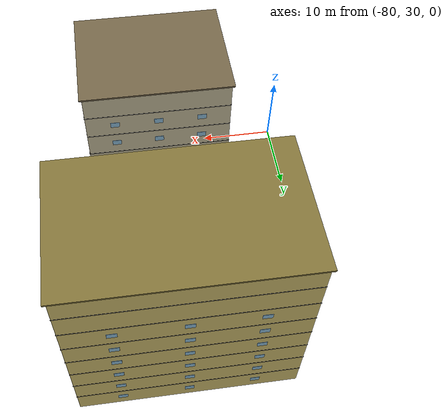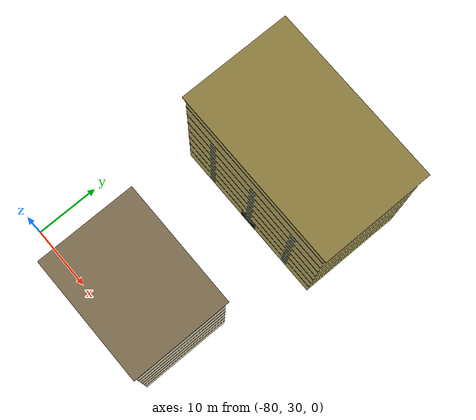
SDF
<sdf version="1.7">
 <world name="campus_regional">
  <model name="teaching_building">
   <static>true</static>
   <pose>-62.0 62.0 0 0 0 0</pose>
   <link name="body">
    <visual name="body">
     <pose>0 0 12.800 0 0 0</pose>
     <geometry><box><size>26.000 16.000 25.600</size></box></geometry>
     <material><ambient>0.900 0.820 0.480 1.000</ambient><diffuse>0.900 0.820 0.480 1.000</diffuse></material>
    </visual>
    <collision name="body_collision">
     <pose>0 0 12.800 0 0 0</pose>
     <geometry><box><size>26.000 16.000 25.600</size></box></geometry>
    </collision>
    <visual name="roof">
     <pose>0 0 25.700 0 0 0</pose>
     <geometry><box><size>26.600 16.600 0.200</size></box></geometry>
     <material><ambient>0.540 0.480 0.240 1.000</ambient><diffuse>0.540 0.480 0.240 1.000</diffuse></material>
    </visual>
    <visual name="floor_sep_n_1">
     <pose>0 8.018 3.200 0 0 0</pose>
     <geometry><box><size>26.100 0.035 0.060</size></box></geometry>
     <material><ambient>0.080 0.080 0.080 1.000</ambient><diffuse>0.080 0.080 0.080 1.000</diffuse></material>
    </visual>
    <visual name="floor_sep_s_1">
     <pose>0 -8.018 3.200 0 0 0</pose>
     <geometry><box><size>26.100 0.035 0.060</size></box></geometry>
     <material><ambient>0.080 0.080 0.080 1.000</ambient><diffuse>0.080 0.080 0.080 1.000</diffuse></material>
    </visual>
    <visual name="floor_sep_e_1">
     <pose>13.018 0 3.200 0 0 0</pose>
     <geometry><box><size>0.035 16.100 0.060</size></box></geometry>
     <material><ambient>0.080 0.080 0.080 1.000</ambient><diffuse>0.080 0.080 0.080 1.000</diffuse></material>
    </visual>
    <visual name="floor_sep_w_1">
     <pose>-13.018 0 3.200 0 0 0</pose>
     <geometry><box><size>0.035 16.100 0.060</size></box></geometry>
     <material><ambient>0.080 0.080 0.080 1.000</ambient><diffuse>0.080 0.080 0.080 1.000</diffuse></material>
    </visual>
    <visual name="floor_sep_n_2">
     <pose>0 8.018 6.400 0 0 0</pose>
     <geometry><box><size>26.100 0.035 0.060</size></box></geometry>
     <material><ambient>0.080 0.080 0.080 1.000</ambient><diffuse>0.080 0.080 0.080 1.000</diffuse></material>
    </visual>
    <visual name="floor_sep_s_2">
     <pose>0 -8.018 6.400 0 0 0</pose>
     <geometry><box><size>26.100 0.035 0.060</size></box></geometry>
     <material><ambient>0.080 0.080 0.080 1.000</ambient><diffuse>0.080 0.080 0.080 1.000</diffuse></material>
    </visual>
    <visual name="floor_sep_e_2">
     <pose>13.018 0 6.400 0 0 0</pose>
     <geometry><box><size>0.035 16.100 0.060</size></box></geometry>
     <material><ambient>0.080 0.080 0.080 1.000</ambient><diffuse>0.080 0.080 0.080 1.000</diffuse></material>
    </visual>
    <visual name="floor_sep_w_2">
     <pose>-13.018 0 6.400 0 0 0</pose>
     <geometry><box><size>0.035 16.100 0.060</size></box></geometry>
     <material><ambient>0.080 0.080 0.080 1.000</ambient><diffuse>0.080 0.080 0.080 1.000</diffuse></material>
    </visual>
    <visual name="floor_sep_n_3">
     <pose>0 8.018 9.600 0 0 0</pose>
     <geometry><box><size>26.100 0.035 0.060</size></box></geometry>
     <material><ambient>0.080 0.080 0.080 1.000</ambient><diffuse>0.080 0.080 0.080 1.000</diffuse></material>
    </visual>
    <visual name="floor_sep_s_3">
     <pose>0 -8.018 9.600 0 0 0</pose>
     <geometry><box><size>26.100 0.035 0.060</size></box></geometry>
     <material><ambient>0.080 0.080 0.080 1.000</ambient><diffuse>0.080 0.080 0.080 1.000</diffuse></material>
    </visual>
    <visual name="floor_sep_e_3">
     <pose>13.018 0 9.600 0 0 0</pose>
     <geometry><box><size>0.035 16.100 0.060</size></box></geometry>
     <material><ambient>0.080 0.080 0.080 1.000</ambient><diffuse>0.080 0.080 0.080 1.000</diffuse></material>
    </visual>
    <visual name="floor_sep_w_3">
     <pose>-13.018 0 9.600 0 0 0</pose>
     <geometry><box><size>0.035 16.100 0.060</size></box></geometry>
     <material><ambient>0.080 0.080 0.080 1.000</ambient><diffuse>0.080 0.080 0.080 1.000</diffuse></material>
    </visual>
    <visual name="floor_sep_n_4">
     <pose>0 8.018 12.800 0 0 0</pose>
     <geometry><box><size>26.100 0.035 0.060</size></box></geometry>
     <material><ambient>0.080 0.080 0.080 1.000</ambient><diffuse>0.080 0.080 0.080 1.000</diffuse></material>
    </visual>
    <visual name="floor_sep_s_4">
     <pose>0 -8.018 12.800 0 0 0</pose>
     <geometry><box><size>26.100 0.035 0.060</size></box></geometry>
     <material><ambient>0.080 0.080 0.080 1.000</ambient><diffuse>0.080 0.080 0.080 1.000</diffuse></material>
    </visual>
    <visual name="floor_sep_e_4">
     <pose>13.018 0 12.800 0 0 0</pose>
     <geometry><box><size>0.035 16.100 0.060</size></box></geometry>
     <material><ambient>0.080 0.080 0.080 1.000</ambient><diffuse>0.080 0.080 0.080 1.000</diffuse></material>
    </visual>
    <visual name="floor_sep_w_4">
     <pose>-13.018 0 12.800 0 0 0</pose>
     <geometry><box><size>0.035 16.100 0.060</size></box></geometry>
     <material><ambient>0.080 0.080 0.080 1.000</ambient><diffuse>0.080 0.080 0.080 1.000</diffuse></material>
    </visual>
    <visual name="floor_sep_n_5">
     <pose>0 8.018 16.000 0 0 0</pose>
     <geometry><box><size>26.100 0.035 0.060</size></box></geometry>
     <material><ambient>0.080 0.080 0.080 1.000</ambient><diffuse>0.080 0.080 0.080 1.000</diffuse></material>
    </visual>
    <visual name="floor_sep_s_5">
     <pose>0 -8.018 16.000 0 0 0</pose>
     <geometry><box><size>26.100 0.035 0.060</size></box></geometry>
     <material><ambient>0.080 0.080 0.080 1.000</ambient><diffuse>0.080 0.080 0.080 1.000</diffuse></material>
    </visual>
    <visual name="floor_sep_e_5">
     <pose>13.018 0 16.000 0 0 0</pose>
     <geometry><box><size>0.035 16.100 0.060</size></box></geometry>
     <material><ambient>0.080 0.080 0.080 1.000</ambient><diffuse>0.080 0.080 0.080 1.000</diffuse></material>
    </visual>
    <visual name="floor_sep_w_5">
     <pose>-13.018 0 16.000 0 0 0</pose>
     <geometry><box><size>0.035 16.100 0.060</size></box></geometry>
     <material><ambient>0.080 0.080 0.080 1.000</ambient><diffuse>0.080 0.080 0.080 1.000</diffuse></material>
    </visual>
    <visual name="floor_sep_n_6">
     <pose>0 8.018 19.200 0 0 0</pose>
     <geometry><box><size>26.100 0.035 0.060</size></box></geometry>
     <material><ambient>0.080 0.080 0.080 1.000</ambient><diffuse>0.080 0.080 0.080 1.000</diffuse></material>
    </visual>
    <visual name="floor_sep_s_6">
     <pose>0 -8.018 19.200 0 0 0</pose>
     <geometry><box><size>26.100 0.035 0.060</size></box></geometry>
     <material><ambient>0.080 0.080 0.080 1.000</ambient><diffuse>0.080 0.080 0.080 1.000</diffuse></material>
    </visual>
    <visual name="floor_sep_e_6">
     <pose>13.018 0 19.200 0 0 0</pose>
     <geometry><box><size>0.035 16.100 0.060</size></box></geometry>
     <material><ambient>0.080 0.080 0.080 1.000</ambient><diffuse>0.080 0.080 0.080 1.000</diffuse></material>
    </visual>
    <visual name="floor_sep_w_6">
     <pose>-13.018 0 19.200 0 0 0</pose>
     <geometry><box><size>0.035 16.100 0.060</size></box></geometry>
     <material><ambient>0.080 0.080 0.080 1.000</ambient><diffuse>0.080 0.080 0.080 1.000</diffuse></material>
    </visual>
    <visual name="floor_sep_n_7">
     <pose>0 8.018 22.400 0 0 0</pose>
     <geometry><box><size>26.100 0.035 0.060</size></box></geometry>
     <material><ambient>0.080 0.080 0.080 1.000</ambient><diffuse>0.080 0.080 0.080 1.000</diffuse></material>
    </visual>
    <visual name="floor_sep_s_7">
     <pose>0 -8.018 22.400 0 0 0</pose>
     <geometry><box><size>26.100 0.035 0.060</size></box></geometry>
     <material><ambient>0.080 0.080 0.080 1.000</ambient><diffuse>0.080 0.080 0.080 1.000</diffuse></material>
    </visual>
    <visual name="floor_sep_e_7">
     <pose>13.018 0 22.400 0 0 0</pose>
     <geometry><box><size>0.035 16.100 0.060</size></box></geometry>
     <material><ambient>0.080 0.080 0.080 1.000</ambient><diffuse>0.080 0.080 0.080 1.000</diffuse></material>
    </visual>
    <visual name="floor_sep_w_7">
     <pose>-13.018 0 22.400 0 0 0</pose>
     <geometry><box><size>0.035 16.100 0.060</size></box></geometry>
     <material><ambient>0.080 0.080 0.080 1.000</ambient><diffuse>0.080 0.080 0.080 1.000</diffuse></material>
    </visual>
    <visual name="front_door">
     <pose>0 -8.012 1.2 0 0 0</pose>
     <geometry><box><size>3.000 0.050 2.400</size></box></geometry>
     <material><ambient>0.080 0.060 0.040 1.000</ambient><diffuse>0.080 0.060 0.040 1.000</diffuse></material>
    </visual>
    <visual name="win_n_1_-7.8">
     <pose>-7.800 8.020 1.700 0 0 0</pose>
     <geometry><box><size>1.100 0.035 0.750</size></box></geometry>
     <material><ambient>0.620 0.820 0.950 1.000</ambient><diffuse>0.620 0.820 0.950 1.000</diffuse></material>
    </visual>
    <visual name="win_s_1_-7.8">
     <pose>-7.800 -8.020 1.700 0 0 0</pose>
     <geometry><box><size>1.100 0.035 0.750</size></box></geometry>
     <material><ambient>0.620 0.820 0.950 1.000</ambient><diffuse>0.620 0.820 0.950 1.000</diffuse></material>
    </visual>
    <visual name="win_n_1_0.0">
     <pose>0.000 8.020 1.700 0 0 0</pose>
     <geometry><box><size>1.100 0.035 0.750</size></box></geometry>
     <material><ambient>0.620 0.820 0.950 1.000</ambient><diffuse>0.620 0.820 0.950 1.000</diffuse></material>
    </visual>
    <visual name="win_s_1_0.0">
     <pose>0.000 -8.020 1.700 0 0 0</pose>
     <geometry><box><size>1.100 0.035 0.750</size></box></geometry>
     <material><ambient>0.620 0.820 0.950 1.000</ambient><diffuse>0.620 0.820 0.950 1.000</diffuse></material>
    </visual>
    <visual name="win_n_1_7.8">
     <pose>7.800 8.020 1.700 0 0 0</pose>
     <geometry><box><size>1.100 0.035 0.750</size></box></geometry>
     <material><ambient>0.620 0.820 0.950 1.000</ambient><diffuse>0.620 0.820 0.950 1.000</diffuse></material>
    </visual>
    <visual name="win_s_1_7.8">
     <pose>7.800 -8.020 1.700 0 0 0</pose>
     <geometry><box><size>1.100 0.035 0.750</size></box></geometry>
     <material><ambient>0.620 0.820 0.950 1.000</ambient><diffuse>0.620 0.820 0.950 1.000</diffuse></material>
    </visual>
    <visual name="win_n_2_-7.8">
     <pose>-7.800 8.020 4.900 0 0 0</pose>
     <geometry><box><size>1.100 0.035 0.750</size></box></geometry>
     <material><ambient>0.620 0.820 0.950 1.000</ambient><diffuse>0.620 0.820 0.950 1.000</diffuse></material>
    </visual>
    <visual name="win_s_2_-7.8">
     <pose>-7.800 -8.020 4.900 0 0 0</pose>
     <geometry><box><size>1.100 0.035 0.750</size></box></geometry>
     <material><ambient>0.620 0.820 0.950 1.000</ambient><diffuse>0.620 0.820 0.950 1.000</diffuse></material>
    </visual>
    <visual name="win_n_2_0.0">
     <pose>0.000 8.020 4.900 0 0 0</pose>
     <geometry><box><size>1.100 0.035 0.750</size></box></geometry>
     <material><ambient>0.620 0.820 0.950 1.000</ambient><diffuse>0.620 0.820 0.950 1.000</diffuse></material>
    </visual>
    <visual name="win_s_2_0.0">
     <pose>0.000 -8.020 4.900 0 0 0</pose>
     <geometry><box><size>1.100 0.035 0.750</size></box></geometry>
     <material><ambient>0.620 0.820 0.950 1.000</ambient><diffuse>0.620 0.820 0.950 1.000</diffuse></material>
    </visual>
    <visual name="win_n_2_7.8">
     <pose>7.800 8.020 4.900 0 0 0</pose>
     <geometry><box><size>1.100 0.035 0.750</size></box></geometry>
     <material><ambient>0.620 0.820 0.950 1.000</ambient><diffuse>0.620 0.820 0.950 1.000</diffuse></material>
    </visual>
    <visual name="win_s_2_7.8">
     <pose>7.800 -8.020 4.900 0 0 0</pose>
     <geometry><box><size>1.100 0.035 0.750</size></box></geometry>
     <material><ambient>0.620 0.820 0.950 1.000</ambient><diffuse>0.620 0.820 0.950 1.000</diffuse></material>
    </visual>
    <visual name="win_n_3_-7.8">
     <pose>-7.800 8.020 8.100 0 0 0</pose>
     <geometry><box><size>1.100 0.035 0.750</size></box></geometry>
     <material><ambient>0.620 0.820 0.950 1.000</ambient><diffuse>0.620 0.820 0.950 1.000</diffuse></material>
    </visual>
    <visual name="win_s_3_-7.8">
     <pose>-7.800 -8.020 8.100 0 0 0</pose>
     <geometry><box><size>1.100 0.035 0.750</size></box></geometry>
     <material><ambient>0.620 0.820 0.950 1.000</ambient><diffuse>0.620 0.820 0.950 1.000</diffuse></material>
    </visual>
    <visual name="win_n_3_0.0">
     <pose>0.000 8.020 8.100 0 0 0</pose>
     <geometry><box><size>1.100 0.035 0.750</size></box></geometry>
     <material><ambient>0.620 0.820 0.950 1.000</ambient><diffuse>0.620 0.820 0.950 1.000</diffuse></material>
    </visual>
    <visual name="win_s_3_0.0">
     <pose>0.000 -8.020 8.100 0 0 0</pose>
     <geometry><box><size>1.100 0.035 0.750</size></box></geometry>
     <material><ambient>0.620 0.820 0.950 1.000</ambient><diffuse>0.620 0.820 0.950 1.000</diffuse></material>
    </visual>
    <visual name="win_n_3_7.8">
     <pose>7.800 8.020 8.100 0 0 0</pose>
     <geometry><box><size>1.100 0.035 0.750</size></box></geometry>
     <material><ambient>0.620 0.820 0.950 1.000</ambient><diffuse>0.620 0.820 0.950 1.000</diffuse></material>
    </visual>
    <visual name="win_s_3_7.8">
     <pose>7.800 -8.020 8.100 0 0 0</pose>
     <geometry><box><size>1.100 0.035 0.750</size></box></geometry>
     <material><ambient>0.620 0.820 0.950 1.000</ambient><diffuse>0.620 0.820 0.950 1.000</diffuse></material>
    </visual>
    <visual name="win_n_4_-7.8">
     <pose>-7.800 8.020 11.300 0 0 0</pose>
     <geometry><box><size>1.100 0.035 0.750</size></box></geometry>
     <material><ambient>0.620 0.820 0.950 1.000</ambient><diffuse>0.620 0.820 0.950 1.000</diffuse></material>
    </visual>
    <visual name="win_s_4_-7.8">
     <pose>-7.800 -8.020 11.300 0 0 0</pose>
     <geometry><box><size>1.100 0.035 0.750</size></box></geometry>
     <material><ambient>0.620 0.820 0.950 1.000</ambient><diffuse>0.620 0.820 0.950 1.000</diffuse></material>
    </visual>
    <visual name="win_n_4_0.0">
     <pose>0.000 8.020 11.300 0 0 0</pose>
     <geometry><box><size>1.100 0.035 0.750</size></box></geometry>
     <material><ambient>0.620 0.820 0.950 1.000</ambient><diffuse>0.620 0.820 0.950 1.000</diffuse></material>
    </visual>
    <visual name="win_s_4_0.0">
     <pose>0.000 -8.020 11.300 0 0 0</pose>
     <geometry><box><size>1.100 0.035 0.750</size></box></geometry>
     <material><ambient>0.620 0.820 0.950 1.000</ambient><diffuse>0.620 0.820 0.950 1.000</diffuse></material>
    </visual>
    <visual name="win_n_4_7.8">
     <pose>7.800 8.020 11.300 0 0 0</pose>
     <geometry><box><size>1.100 0.035 0.750</size></box></geometry>
     <material><ambient>0.620 0.820 0.950 1.000</ambient><diffuse>0.620 0.820 0.950 1.000</diffuse></material>
    </visual>
    <visual name="win_s_4_7.8">
     <pose>7.800 -8.020 11.300 0 0 0</pose>
     <geometry><box><size>1.100 0.035 0.750</size></box></geometry>
     <material><ambient>0.620 0.820 0.950 1.000</ambient><diffuse>0.620 0.820 0.950 1.000</diffuse></material>
    </visual>
    <visual name="win_n_5_-7.8">
     <pose>-7.800 8.020 14.500 0 0 0</pose>
     <geometry><box><size>1.100 0.035 0.750</size></box></geometry>
     <material><ambient>0.620 0.820 0.950 1.000</ambient><diffuse>0.620 0.820 0.950 1.000</diffuse></material>
    </visual>
    <visual name="win_s_5_-7.8">
     <pose>-7.800 -8.020 14.500 0 0 0</pose>
     <geometry><box><size>1.100 0.035 0.750</size></box></geometry>
     <material><ambient>0.620 0.820 0.950 1.000</ambient><diffuse>0.620 0.820 0.950 1.000</diffuse></material>
    </visual>
    <visual name="win_n_5_0.0">
     <pose>0.000 8.020 14.500 0 0 0</pose>
     <geometry><box><size>1.100 0.035 0.750</size></box></geometry>
     <material><ambient>0.620 0.820 0.950 1.000</ambient><diffuse>0.620 0.820 0.950 1.000</diffuse></material>
    </visual>
    <visual name="win_s_5_0.0">
     <pose>0.000 -8.020 14.500 0 0 0</pose>
     <geometry><box><size>1.100 0.035 0.750</size></box></geometry>
     <material><ambient>0.620 0.820 0.950 1.000</ambient><diffuse>0.620 0.820 0.950 1.000</diffuse></material>
    </visual>
    <visual name="win_n_5_7.8">
     <pose>7.800 8.020 14.500 0 0 0</pose>
     <geometry><box><size>1.100 0.035 0.750</size></box></geometry>
     <material><ambient>0.620 0.820 0.950 1.000</ambient><diffuse>0.620 0.820 0.950 1.000</diffuse></material>
    </visual>
    <visual name="win_s_5_7.8">
     <pose>7.800 -8.020 14.500 0 0 0</pose>
     <geometry><box><size>1.100 0.035 0.750</size></box></geometry>
     <material><ambient>0.620 0.820 0.950 1.000</ambient><diffuse>0.620 0.820 0.950 1.000</diffuse></material>
    </visual>
    <visual name="win_n_6_-7.8">
     <pose>-7.800 8.020 17.700 0 0 0</pose>
     <geometry><box><size>1.100 0.035 0.750</size></box></geometry>
     <material><ambient>0.620 0.820 0.950 1.000</ambient><diffuse>0.620 0.820 0.950 1.000</diffuse></material>
    </visual>
    <visual name="win_s_6_-7.8">
     <pose>-7.800 -8.020 17.700 0 0 0</pose>
     <geometry><box><size>1.100 0.035 0.750</size></box></geometry>
     <material><ambient>0.620 0.820 0.950 1.000</ambient><diffuse>0.620 0.820 0.950 1.000</diffuse></material>
    </visual>
    <visual name="win_n_6_0.0">
     <pose>0.000 8.020 17.700 0 0 0</pose>
     <geometry><box><size>1.100 0.035 0.750</size></box></geometry>
     <material><ambient>0.620 0.820 0.950 1.000</ambient><diffuse>0.620 0.820 0.950 1.000</diffuse></material>
    </visual>
    <visual name="win_s_6_0.0">
     <pose>0.000 -8.020 17.700 0 0 0</pose>
     <geometry><box><size>1.100 0.035 0.750</size></box></geometry>
     <material><ambient>0.620 0.820 0.950 1.000</ambient><diffuse>0.620 0.820 0.950 1.000</diffuse></material>
    </visual>
    <visual name="win_n_6_7.8">
     <pose>7.800 8.020 17.700 0 0 0</pose>
     <geometry><box><size>1.100 0.035 0.750</size></box></geometry>
     <material><ambient>0.620 0.820 0.950 1.000</ambient><diffuse>0.620 0.820 0.950 1.000</diffuse></material>
    </visual>
    <visual name="win_s_6_7.8">
     <pose>7.800 -8.020 17.700 0 0 0</pose>
     <geometry><box><size>1.100 0.035 0.750</size></box></geometry>
     <material><ambient>0.620 0.820 0.950 1.000</ambient><diffuse>0.620 0.820 0.950 1.000</diffuse></material>
    </visual>
   </link>
  </model>
  <model name="library">
   <static>true</static>
   <pose>-62.0 35.0 0 0 0 0</pose>
   <link name="body">
    <visual name="body">
     <pose>0 0 11.200 0 0 0</pose>
     <geometry><box><size>18.000 14.000 22.400</size></box></geometry>
     <material><ambient>0.860 0.820 0.680 1.000</ambient><diffuse>0.860 0.820 0.680 1.000</diffuse></material>
    </visual>
    <collision name="body_collision">
     <pose>0 0 11.200 0 0 0</pose>
     <geometry><box><size>18.000 14.000 22.400</size></box></geometry>
    </collision>
    <visual name="roof">
     <pose>0 0 22.500 0 0 0</pose>
     <geometry><box><size>18.600 14.600 0.200</size></box></geometry>
     <material><ambient>0.480 0.420 0.300 1.000</ambient><diffuse>0.480 0.420 0.300 1.000</diffuse></material>
    </visual>
    <visual name="floor_sep_n_1">
     <pose>0 7.018 3.200 0 0 0</pose>
     <geometry><box><size>18.100 0.035 0.060</size></box></geometry>
     <material><ambient>0.080 0.080 0.080 1.000</ambient><diffuse>0.080 0.080 0.080 1.000</diffuse></material>
    </visual>
    <visual name="floor_sep_s_1">
     <pose>0 -7.018 3.200 0 0 0</pose>
     <geometry><box><size>18.100 0.035 0.060</size></box></geometry>
     <material><ambient>0.080 0.080 0.080 1.000</ambient><diffuse>0.080 0.080 0.080 1.000</diffuse></material>
    </visual>
    <visual name="floor_sep_e_1">
     <pose>9.018 0 3.200 0 0 0</pose>
     <geometry><box><size>0.035 14.100 0.060</size></box></geometry>
     <material><ambient>0.080 0.080 0.080 1.000</ambient><diffuse>0.080 0.080 0.080 1.000</diffuse></material>
    </visual>
    <visual name="floor_sep_w_1">
     <pose>-9.018 0 3.200 0 0 0</pose>
     <geometry><box><size>0.035 14.100 0.060</size></box></geometry>
     <material><ambient>0.080 0.080 0.080 1.000</ambient><diffuse>0.080 0.080 0.080 1.000</diffuse></material>
    </visual>
    <visual name="floor_sep_n_2">
     <pose>0 7.018 6.400 0 0 0</pose>
     <geometry><box><size>18.100 0.035 0.060</size></box></geometry>
     <material><ambient>0.080 0.080 0.080 1.000</ambient><diffuse>0.080 0.080 0.080 1.000</diffuse></material>
    </visual>
    <visual name="floor_sep_s_2">
     <pose>0 -7.018 6.400 0 0 0</pose>
     <geometry><box><size>18.100 0.035 0.060</size></box></geometry>
     <material><ambient>0.080 0.080 0.080 1.000</ambient><diffuse>0.080 0.080 0.080 1.000</diffuse></material>
    </visual>
    <visual name="floor_sep_e_2">
     <pose>9.018 0 6.400 0 0 0</pose>
     <geometry><box><size>0.035 14.100 0.060</size></box></geometry>
     <material><ambient>0.080 0.080 0.080 1.000</ambient><diffuse>0.080 0.080 0.080 1.000</diffuse></material>
    </visual>
    <visual name="floor_sep_w_2">
     <pose>-9.018 0 6.400 0 0 0</pose>
     <geometry><box><size>0.035 14.100 0.060</size></box></geometry>
     <material><ambient>0.080 0.080 0.080 1.000</ambient><diffuse>0.080 0.080 0.080 1.000</diffuse></material>
    </visual>
    <visual name="floor_sep_n_3">
     <pose>0 7.018 9.600 0 0 0</pose>
     <geometry><box><size>18.100 0.035 0.060</size></box></geometry>
     <material><ambient>0.080 0.080 0.080 1.000</ambient><diffuse>0.080 0.080 0.080 1.000</diffuse></material>
    </visual>
    <visual name="floor_sep_s_3">
     <pose>0 -7.018 9.600 0 0 0</pose>
     <geometry><box><size>18.100 0.035 0.060</size></box></geometry>
     <material><ambient>0.080 0.080 0.080 1.000</ambient><diffuse>0.080 0.080 0.080 1.000</diffuse></material>
    </visual>
    <visual name="floor_sep_e_3">
     <pose>9.018 0 9.600 0 0 0</pose>
     <geometry><box><size>0.035 14.100 0.060</size></box></geometry>
     <material><ambient>0.080 0.080 0.080 1.000</ambient><diffuse>0.080 0.080 0.080 1.000</diffuse></material>
    </visual>
    <visual name="floor_sep_w_3">
     <pose>-9.018 0 9.600 0 0 0</pose>
     <geometry><box><size>0.035 14.100 0.060</size></box></geometry>
     <material><ambient>0.080 0.080 0.080 1.000</ambient><diffuse>0.080 0.080 0.080 1.000</diffuse></material>
    </visual>
    <visual name="floor_sep_n_4">
     <pose>0 7.018 12.800 0 0 0</pose>
     <geometry><box><size>18.100 0.035 0.060</size></box></geometry>
     <material><ambient>0.080 0.080 0.080 1.000</ambient><diffuse>0.080 0.080 0.080 1.000</diffuse></material>
    </visual>
    <visual name="floor_sep_s_4">
     <pose>0 -7.018 12.800 0 0 0</pose>
     <geometry><box><size>18.100 0.035 0.060</size></box></geometry>
     <material><ambient>0.080 0.080 0.080 1.000</ambient><diffuse>0.080 0.080 0.080 1.000</diffuse></material>
    </visual>
    <visual name="floor_sep_e_4">
     <pose>9.018 0 12.800 0 0 0</pose>
     <geometry><box><size>0.035 14.100 0.060</size></box></geometry>
     <material><ambient>0.080 0.080 0.080 1.000</ambient><diffuse>0.080 0.080 0.080 1.000</diffuse></material>
    </visual>
    <visual name="floor_sep_w_4">
     <pose>-9.018 0 12.800 0 0 0</pose>
     <geometry><box><size>0.035 14.100 0.060</size></box></geometry>
     <material><ambient>0.080 0.080 0.080 1.000</ambient><diffuse>0.080 0.080 0.080 1.000</diffuse></material>
    </visual>
    <visual name="floor_sep_n_5">
     <pose>0 7.018 16.000 0 0 0</pose>
     <geometry><box><size>18.100 0.035 0.060</size></box></geometry>
     <material><ambient>0.080 0.080 0.080 1.000</ambient><diffuse>0.080 0.080 0.080 1.000</diffuse></material>
    </visual>
    <visual name="floor_sep_s_5">
     <pose>0 -7.018 16.000 0 0 0</pose>
     <geometry><box><size>18.100 0.035 0.060</size></box></geometry>
     <material><ambient>0.080 0.080 0.080 1.000</ambient><diffuse>0.080 0.080 0.080 1.000</diffuse></material>
    </visual>
    <visual name="floor_sep_e_5">
     <pose>9.018 0 16.000 0 0 0</pose>
     <geometry><box><size>0.035 14.100 0.060</size></box></geometry>
     <material><ambient>0.080 0.080 0.080 1.000</ambient><diffuse>0.080 0.080 0.080 1.000</diffuse></material>
    </visual>
    <visual name="floor_sep_w_5">
     <pose>-9.018 0 16.000 0 0 0</pose>
     <geometry><box><size>0.035 14.100 0.060</size></box></geometry>
     <material><ambient>0.080 0.080 0.080 1.000</ambient><diffuse>0.080 0.080 0.080 1.000</diffuse></material>
    </visual>
    <visual name="floor_sep_n_6">
     <pose>0 7.018 19.200 0 0 0</pose>
     <geometry><box><size>18.100 0.035 0.060</size></box></geometry>
     <material><ambient>0.080 0.080 0.080 1.000</ambient><diffuse>0.080 0.080 0.080 1.000</diffuse></material>
    </visual>
    <visual name="floor_sep_s_6">
     <pose>0 -7.018 19.200 0 0 0</pose>
     <geometry><box><size>18.100 0.035 0.060</size></box></geometry>
     <material><ambient>0.080 0.080 0.080 1.000</ambient><diffuse>0.080 0.080 0.080 1.000</diffuse></material>
    </visual>
    <visual name="floor_sep_e_6">
     <pose>9.018 0 19.200 0 0 0</pose>
     <geometry><box><size>0.035 14.100 0.060</size></box></geometry>
     <material><ambient>0.080 0.080 0.080 1.000</ambient><diffuse>0.080 0.080 0.080 1.000</diffuse></material>
    </visual>
    <visual name="floor_sep_w_6">
     <pose>-9.018 0 19.200 0 0 0</pose>
     <geometry><box><size>0.035 14.100 0.060</size></box></geometry>
     <material><ambient>0.080 0.080 0.080 1.000</ambient><diffuse>0.080 0.080 0.080 1.000</diffuse></material>
    </visual>
    <visual name="front_door">
     <pose>0 -7.012 1.2 0 0 0</pose>
     <geometry><box><size>3.000 0.050 2.400</size></box></geometry>
     <material><ambient>0.080 0.060 0.040 1.000</ambient><diffuse>0.080 0.060 0.040 1.000</diffuse></material>
    </visual>
    <visual name="win_n_1_-5.4">
     <pose>-5.400 7.020 1.700 0 0 0</pose>
     <geometry><box><size>1.100 0.035 0.750</size></box></geometry>
     <material><ambient>0.620 0.820 0.950 1.000</ambient><diffuse>0.620 0.820 0.950 1.000</diffuse></material>
    </visual>
    <visual name="win_s_1_-5.4">
     <pose>-5.400 -7.020 1.700 0 0 0</pose>
     <geometry><box><size>1.100 0.035 0.750</size></box></geometry>
     <material><ambient>0.620 0.820 0.950 1.000</ambient><diffuse>0.620 0.820 0.950 1.000</diffuse></material>
    </visual>
    <visual name="win_n_1_0.0">
     <pose>0.000 7.020 1.700 0 0 0</pose>
     <geometry><box><size>1.100 0.035 0.750</size></box></geometry>
     <material><ambient>0.620 0.820 0.950 1.000</ambient><diffuse>0.620 0.820 0.950 1.000</diffuse></material>
    </visual>
    <visual name="win_s_1_0.0">
     <pose>0.000 -7.020 1.700 0 0 0</pose>
     <geometry><box><size>1.100 0.035 0.750</size></box></geometry>
     <material><ambient>0.620 0.820 0.950 1.000</ambient><diffuse>0.620 0.820 0.950 1.000</diffuse></material>
    </visual>
    <visual name="win_n_1_5.4">
     <pose>5.400 7.020 1.700 0 0 0</pose>
     <geometry><box><size>1.100 0.035 0.750</size></box></geometry>
     <material><ambient>0.620 0.820 0.950 1.000</ambient><diffuse>0.620 0.820 0.950 1.000</diffuse></material>
    </visual>
    <visual name="win_s_1_5.4">
     <pose>5.400 -7.020 1.700 0 0 0</pose>
     <geometry><box><size>1.100 0.035 0.750</size></box></geometry>
     <material><ambient>0.620 0.820 0.950 1.000</ambient><diffuse>0.620 0.820 0.950 1.000</diffuse></material>
    </visual>
    <visual name="win_n_2_-5.4">
     <pose>-5.400 7.020 4.900 0 0 0</pose>
     <geometry><box><size>1.100 0.035 0.750</size></box></geometry>
     <material><ambient>0.620 0.820 0.950 1.000</ambient><diffuse>0.620 0.820 0.950 1.000</diffuse></material>
    </visual>
    <visual name="win_s_2_-5.4">
     <pose>-5.400 -7.020 4.900 0 0 0</pose>
     <geometry><box><size>1.100 0.035 0.750</size></box></geometry>
     <material><ambient>0.620 0.820 0.950 1.000</ambient><diffuse>0.620 0.820 0.950 1.000</diffuse></material>
    </visual>
    <visual name="win_n_2_0.0">
     <pose>0.000 7.020 4.900 0 0 0</pose>
     <geometry><box><size>1.100 0.035 0.750</size></box></geometry>
     <material><ambient>0.620 0.820 0.950 1.000</ambient><diffuse>0.620 0.820 0.950 1.000</diffuse></material>
    </visual>
    <visual name="win_s_2_0.0">
     <pose>0.000 -7.020 4.900 0 0 0</pose>
     <geometry><box><size>1.100 0.035 0.750</size></box></geometry>
     <material><ambient>0.620 0.820 0.950 1.000</ambient><diffuse>0.620 0.820 0.950 1.000</diffuse></material>
    </visual>
    <visual name="win_n_2_5.4">
     <pose>5.400 7.020 4.900 0 0 0</pose>
     <geometry><box><size>1.100 0.035 0.750</size></box></geometry>
     <material><ambient>0.620 0.820 0.950 1.000</ambient><diffuse>0.620 0.820 0.950 1.000</diffuse></material>
    </visual>
    <visual name="win_s_2_5.4">
     <pose>5.400 -7.020 4.900 0 0 0</pose>
     <geometry><box><size>1.100 0.035 0.750</size></box></geometry>
     <material><ambient>0.620 0.820 0.950 1.000</ambient><diffuse>0.620 0.820 0.950 1.000</diffuse></material>
    </visual>
    <visual name="win_n_3_-5.4">
     <pose>-5.400 7.020 8.100 0 0 0</pose>
     <geometry><box><size>1.100 0.035 0.750</size></box></geometry>
     <material><ambient>0.620 0.820 0.950 1.000</ambient><diffuse>0.620 0.820 0.950 1.000</diffuse></material>
    </visual>
    <visual name="win_s_3_-5.4">
     <pose>-5.400 -7.020 8.100 0 0 0</pose>
     <geometry><box><size>1.100 0.035 0.750</size></box></geometry>
     <material><ambient>0.620 0.820 0.950 1.000</ambient><diffuse>0.620 0.820 0.950 1.000</diffuse></material>
    </visual>
    <visual name="win_n_3_0.0">
     <pose>0.000 7.020 8.100 0 0 0</pose>
     <geometry><box><size>1.100 0.035 0.750</size></box></geometry>
     <material><ambient>0.620 0.820 0.950 1.000</ambient><diffuse>0.620 0.820 0.950 1.000</diffuse></material>
    </visual>
    <visual name="win_s_3_0.0">
     <pose>0.000 -7.020 8.100 0 0 0</pose>
     <geometry><box><size>1.100 0.035 0.750</size></box></geometry>
     <material><ambient>0.620 0.820 0.950 1.000</ambient><diffuse>0.620 0.820 0.950 1.000</diffuse></material>
    </visual>
    <visual name="win_n_3_5.4">
     <pose>5.400 7.020 8.100 0 0 0</pose>
     <geometry><box><size>1.100 0.035 0.750</size></box></geometry>
     <material><ambient>0.620 0.820 0.950 1.000</ambient><diffuse>0.620 0.820 0.950 1.000</diffuse></material>
    </visual>
    <visual name="win_s_3_5.4">
     <pose>5.400 -7.020 8.100 0 0 0</pose>
     <geometry><box><size>1.100 0.035 0.750</size></box></geometry>
     <material><ambient>0.620 0.820 0.950 1.000</ambient><diffuse>0.620 0.820 0.950 1.000</diffuse></material>
    </visual>
    <visual name="win_n_4_-5.4">
     <pose>-5.400 7.020 11.300 0 0 0</pose>
     <geometry><box><size>1.100 0.035 0.750</size></box></geometry>
     <material><ambient>0.620 0.820 0.950 1.000</ambient><diffuse>0.620 0.820 0.950 1.000</diffuse></material>
    </visual>
    <visual name="win_s_4_-5.4">
     <pose>-5.400 -7.020 11.300 0 0 0</pose>
     <geometry><box><size>1.100 0.035 0.750</size></box></geometry>
     <material><ambient>0.620 0.820 0.950 1.000</ambient><diffuse>0.620 0.820 0.950 1.000</diffuse></material>
    </visual>
    <visual name="win_n_4_0.0">
     <pose>0.000 7.020 11.300 0 0 0</pose>
     <geometry><box><size>1.100 0.035 0.750</size></box></geometry>
     <material><ambient>0.620 0.820 0.950 1.000</ambient><diffuse>0.620 0.820 0.950 1.000</diffuse></material>
    </visual>
    <visual name="win_s_4_0.0">
     <pose>0.000 -7.020 11.300 0 0 0</pose>
     <geometry><box><size>1.100 0.035 0.750</size></box></geometry>
     <material><ambient>0.620 0.820 0.950 1.000</ambient><diffuse>0.620 0.820 0.950 1.000</diffuse></material>
    </visual>
    <visual name="win_n_4_5.4">
     <pose>5.400 7.020 11.300 0 0 0</pose>
     <geometry><box><size>1.100 0.035 0.750</size></box></geometry>
     <material><ambient>0.620 0.820 0.950 1.000</ambient><diffuse>0.620 0.820 0.950 1.000</diffuse></material>
    </visual>
    <visual name="win_s_4_5.4">
     <pose>5.400 -7.020 11.300 0 0 0</pose>
     <geometry><box><size>1.100 0.035 0.750</size></box></geometry>
     <material><ambient>0.620 0.820 0.950 1.000</ambient><diffuse>0.620 0.820 0.950 1.000</diffuse></material>
    </visual>
    <visual name="win_n_5_-5.4">
     <pose>-5.400 7.020 14.500 0 0 0</pose>
     <geometry><box><size>1.100 0.035 0.750</size></box></geometry>
     <material><ambient>0.620 0.820 0.950 1.000</ambient><diffuse>0.620 0.820 0.950 1.000</diffuse></material>
    </visual>
    <visual name="win_s_5_-5.4">
     <pose>-5.400 -7.020 14.500 0 0 0</pose>
     <geometry><box><size>1.100 0.035 0.750</size></box></geometry>
     <material><ambient>0.620 0.820 0.950 1.000</ambient><diffuse>0.620 0.820 0.950 1.000</diffuse></material>
    </visual>
    <visual name="win_n_5_0.0">
     <pose>0.000 7.020 14.500 0 0 0</pose>
     <geometry><box><size>1.100 0.035 0.750</size></box></geometry>
     <material><ambient>0.620 0.820 0.950 1.000</ambient><diffuse>0.620 0.820 0.950 1.000</diffuse></material>
    </visual>
    <visual name="win_s_5_0.0">
     <pose>0.000 -7.020 14.500 0 0 0</pose>
     <geometry><box><size>1.100 0.035 0.750</size></box></geometry>
     <material><ambient>0.620 0.820 0.950 1.000</ambient><diffuse>0.620 0.820 0.950 1.000</diffuse></material>
    </visual>
    <visual name="win_n_5_5.4">
     <pose>5.400 7.020 14.500 0 0 0</pose>
     <geometry><box><size>1.100 0.035 0.750</size></box></geometry>
     <material><ambient>0.620 0.820 0.950 1.000</ambient><diffuse>0.620 0.820 0.950 1.000</diffuse></material>
    </visual>
    <visual name="win_s_5_5.4">
     <pose>5.400 -7.020 14.500 0 0 0</pose>
     <geometry><box><size>1.100 0.035 0.750</size></box></geometry>
     <material><ambient>0.620 0.820 0.950 1.000</ambient><diffuse>0.620 0.820 0.950 1.000</diffuse></material>
    </visual>
    <visual name="win_n_6_-5.4">
     <pose>-5.400 7.020 17.700 0 0 0</pose>
     <geometry><box><size>1.100 0.035 0.750</size></box></geometry>
     <material><ambient>0.620 0.820 0.950 1.000</ambient><diffuse>0.620 0.820 0.950 1.000</diffuse></material>
    </visual>
    <visual name="win_s_6_-5.4">
     <pose>-5.400 -7.020 17.700 0 0 0</pose>
     <geometry><box><size>1.100 0.035 0.750</size></box></geometry>
     <material><ambient>0.620 0.820 0.950 1.000</ambient><diffuse>0.620 0.820 0.950 1.000</diffuse></material>
    </visual>
    <visual name="win_n_6_0.0">
     <pose>0.000 7.020 17.700 0 0 0</pose>
     <geometry><box><size>1.100 0.035 0.750</size></box></geometry>
     <material><ambient>0.620 0.820 0.950 1.000</ambient><diffuse>0.620 0.820 0.950 1.000</diffuse></material>
    </visual>
    <visual name="win_s_6_0.0">
     <pose>0.000 -7.020 17.700 0 0 0</pose>
     <geometry><box><size>1.100 0.035 0.750</size></box></geometry>
     <material><ambient>0.620 0.820 0.950 1.000</ambient><diffuse>0.620 0.820 0.950 1.000</diffuse></material>
    </visual>
    <visual name="win_n_6_5.4">
     <pose>5.400 7.020 17.700 0 0 0</pose>
     <geometry><box><size>1.100 0.035 0.750</size></box></geometry>
     <material><ambient>0.620 0.820 0.950 1.000</ambient><diffuse>0.620 0.820 0.950 1.000</diffuse></material>
    </visual>
    <visual name="win_s_6_5.4">
     <pose>5.400 -7.020 17.700 0 0 0</pose>
     <geometry><box><size>1.100 0.035 0.750</size></box></geometry>
     <material><ambient>0.620 0.820 0.950 1.000</ambient><diffuse>0.620 0.820 0.950 1.000</diffuse></material>
    </visual>
   </link>
  </model>
 </world>
</sdf>
